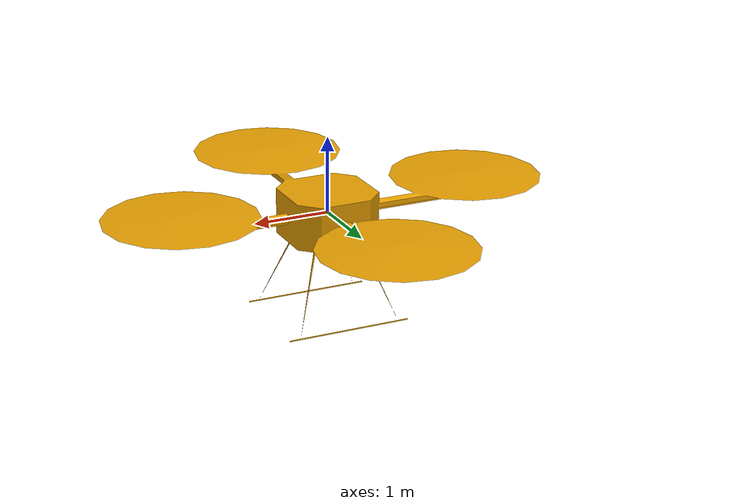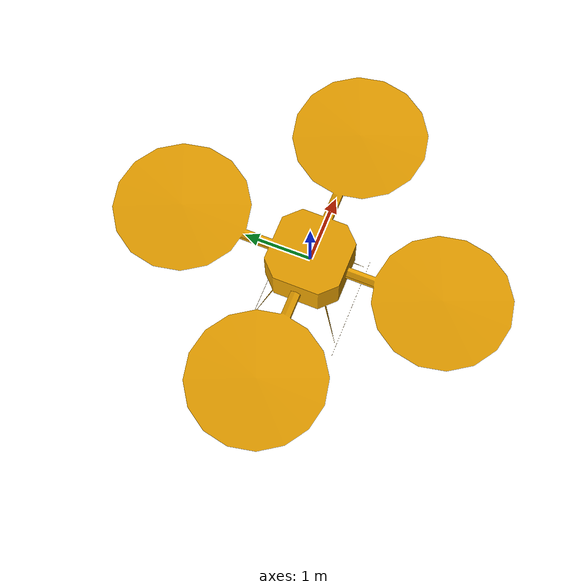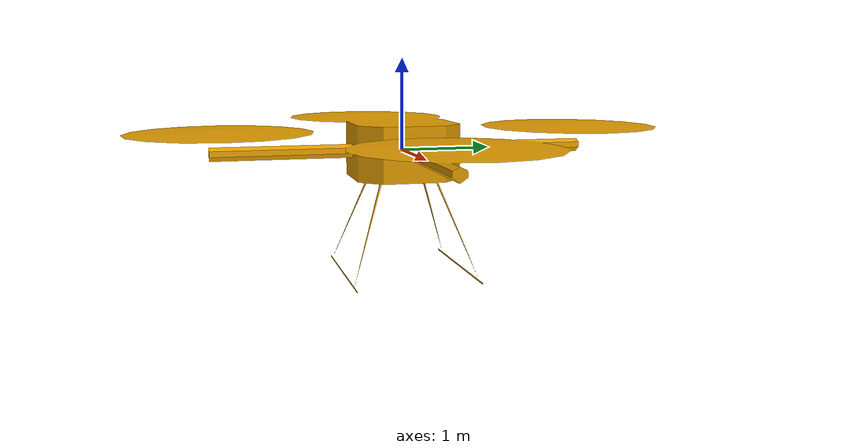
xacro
<?xml version="1.0"?>
<robot xmlns:xacro="http://www.ros.org/wiki/xacro" name="quadrotor">
	<!-- base airframe -->

  <xacro:property name="pi" value="3.1415926535897931"/>
  <xacro:property name="mass" value="0.5" />
  <xacro:property name="ixx" value="0.00264" />
  <xacro:property name="iyy" value="0.00264" />
  <xacro:property name="izz" value="0.00496" />

  <link name="base_link">
    <inertial>
      <mass value="${mass}"/>
      <origin xyz="0 0 0"/>
      <inertia ixx="${ixx}" ixy="0.0" ixz="0.0" iyy="${iyy}" iyz="0.0" izz="${izz}" />
    </inertial>

    <visual>
      <origin xyz="0 0 0" rpy="0 0 0"/>
      <geometry>
	      <mesh filename="file://$(find quadrotor)/meshes/quadrotor.dae"/>
      </geometry>
    </visual>

    <collision>
      <origin xyz="0 0 0" rpy="0 0 0" />
      <geometry>
	      <mesh filename="file://$(find quadrotor)/meshes/quadrotor.stl"/>
      </geometry>
    </collision>

  </link>

  <xacro:include filename="camera.xacro" />

  <gazebo>
    <plugin name="quadrotor_model" filename="libquadrotor_plugin.so">
      <max_velocity>0.3</max_velocity>
    </plugin>
  </gazebo>

</robot>

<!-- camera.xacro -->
<robot xmlns:xacro="http://www.ros.org/wiki/xacro" name="quadrotor">

  <material name="orange">
    <color rgba="1 0.3 0.1 1"/>
  </material>

  <joint name="camera_joint" type="fixed">
    <parent link="base_link"/>
    <child link="camera_link"/>
    <origin xyz="0.305 0 0.08" rpy="0 0 0"/>
  </joint>

  <link name="camera_link">
    <visual>
      <geometry>
        <box size="0.010 0.03 0.03"/>
      </geometry>
      <material name="orange"/>
    </visual>
  </link>

  <joint name="camera_optical_joint" type="fixed">
    <origin xyz="0 0 0" rpy="${-pi/2} 0 ${-pi/2}" />
    <parent link="camera_link" />
    <child link="camera_link_optical" />
  </joint>

  <link name="camera_link_optical"></link>

  <gazebo reference="camera_link">
    <material>Gazebo/Orange</material>
    <sensor name="camera" type="camera">
      <pose> 0 0 0 0 0 0 </pose>
      <visualize>true</visualize>
      <update_rate>10</update_rate>
      <camera>
        <horizontal_fov>1.089</horizontal_fov>
        <image>
          <format>R8G8B8</format>
          <width>640</width>
          <height>480</height>
        </image>
	<clip>
	  <near>0.05</near>
	  <far>8.0</far>
	</clip>
      </camera>
      <plugin name="camera_controller" filename="libgazebo_ros_camera.so">
	<frame_name>camera_link_optical</frame_name>
      </plugin>
    </sensor>
  </gazebo>
</robot>
